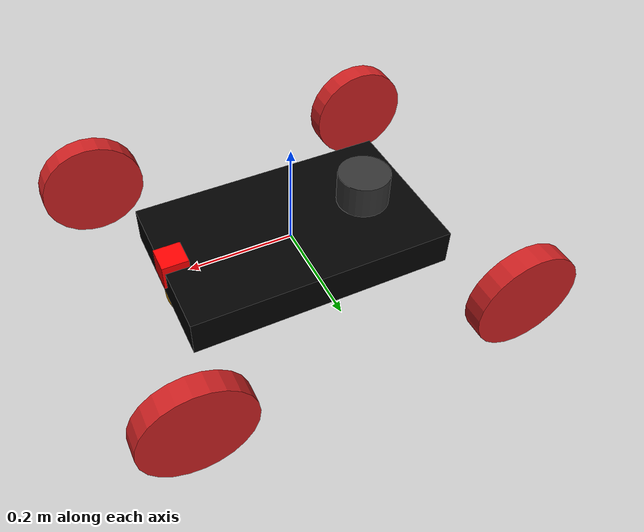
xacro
<?xml version="1.0"?>
<robot xmlns:xacro="http://www.ros.org/wiki/xacro" name="SherlockBot_xacro">
<!-- Gazebo Implementation-->
<!-- Colors-->
  <material name="black">
    <color rgba="0.0 0.0 0.0 1.0"/>
  </material>
  <material name="blue">
    <color rgba="0.203125 0.23828125 0.28515625 1.0"/>
  </material>
  <material name="green">
    <color rgba="0.0 0.8 0.0 1.0"/>
  </material>
  <material name="grey">
    <color rgba="0.2 0.2 0.2 1.0"/>
  </material>
  <material name="orange">
    <color rgba="1.0 0.423529411765 0.0392156862745 1.0"/>
  </material>
  <material name="brown">
    <color rgba="0.870588235294 0.811764705882 0.764705882353 1.0"/>
  </material>
  <material name="red">
    <color rgba="0.80078125 0.12890625 0.1328125 1.0"/>
  </material>
  <material name="white">
    <color rgba="1.0 1.0 1.0 1.0"/>
  </material>
<!-- Geometry -->
  <xacro:macro name="cylinder_geometry" params="l r">
    <geometry>
      <cylinder length="${l}" radius="${r}"/>
    </geometry>
  </xacro:macro>

<!-- Inertia-->
  <xacro:macro name="inertia" params="mass">
    <inertial>
      <mass value="${mass}"/>
      <origin rpy="0 1.5707 1.5707" xyz="0 0 0"/>
      <inertia ixx="0.000526666666667" ixy="0" ixz="0" iyy="0.000526666666667" iyz="0" izz="0.001"/>
    </inertial>
  </xacro:macro>

<!-- Wheels Macro-->
  <xacro:macro name="wheel" params="prefix x y z">
    <link name="${prefix}_wheel_link">
      <xacro:inertia mass="0.2"/>
      <collision>
        <origin rpy="0 1.5707 1.5707" xyz="${x} ${y} ${z}"/>
        <xacro:cylinder_geometry r="0.1" l="0.04"/>
      </collision>
      <visual>
        <origin rpy="0 1.5707 1.5707" xyz="${x} ${y} ${z}"/>
        <xacro:cylinder_geometry  l="0.04" r="0.1"/>
        <material name="red"/>
      </visual>
    </link>

    <joint name="${prefix}_wheel_joint" type="continuous">
      <origin rpy="0 0 0" xyz="${x} ${y} ${z}"/>
      <child link="${prefix}_wheel_link"/>
      <parent link="body"/>
      <axis rpy="0 0 0" xyz="0 1 0"/>
      <limit effort="10000" velocity="1000"/>
      <joint_properties damping="1.0" friction="1.0"/>
    </joint>
  </xacro:macro>
<!-- Dummy link and joint-->
<!-- Body Configuration -->
  <link name="body">
    <!-- pose and inertial -->

    <inertial>
      <mass value="5"/>
      <origin rpy="0 0 0" xyz="0 0 0.1"/>
      <inertia ixx="0.0395416666667" ixy="0" ixz="0" iyy="0.106208333333" iyz="0" izz="0.106208333333"/>
    </inertial>
    <!-- body -->
    <collision name="collision_body">
      <geometry>
        <box size="0.5 0.3 0.07"/>
      </geometry>
    </collision>
    <visual>
      <origin rpy="0 0 0" xyz="0 0 0"/>
      <geometry>
        <box size="0.5 0.3 0.07"/>
      </geometry>
      <material name="black"/>
    </visual>
    <!-- caster front -->
    <collision name="caster_front_collision">
      <origin rpy=" 0 0 0" xyz="0.35 0 -0.05"/>
      <geometry>
        <sphere radius="0.05"/>
      </geometry>
    </collision>
    <visual name="caster_front_visual">
      <origin rpy=" 0 0 0" xyz="0.2 0 -0.05"/>
      <geometry>
        <sphere radius="0.05"/>
      </geometry>
    </visual>
  </link>

<!-- Wheels configuration -->
  <xacro:wheel prefix="back_right" x="-0.15" y="0.15" z="0"/>
  <xacro:wheel prefix="back_left" x="-0.15" y="-0.15" z="0"/>
  <xacro:wheel prefix="front_right" x="0.15" y="0.15" z="0"/>
  <xacro:wheel prefix="front_left" x="0.15" y="-0.15" z="0"/>

<!-- Laser -->
  <link name="laser_link">
	  <collision>
	    <origin xyz="0 0 0.025" rpy="0 0 0"/>
	    <geometry>
		    <box size="0.05 0.05 0.05"/>
	    </geometry>
	  </collision>
	  <visual>
	    <origin xyz="0 0 0.025" rpy="0 0 0"/>
	    <geometry>
		    <box size="0.05 0.05 0.05"/>
	    </geometry>
	    <material name="red">
		    <color rgba="1 0 0 1"/>
	    </material>
	  </visual>
	  <inertial>
	    <mass value="1e-5" />
	    <origin xyz="0 0 0" rpy="0 0 0"/>
	    <inertia ixx="1e-6" ixy="0" ixz="0" iyy="1e-6" iyz="0" izz="1e-6" />
	  </inertial>
  </link>

  <joint name="laser_joint" type="fixed">
	  <axis xyz="0 1 0" />
	  <origin xyz="0.23 0 0.0" rpy="0 0 0"/>
	  <parent link="body"/>
	  <child link="laser_link"/>
	</joint>

<!-- Arm -->

  <joint name="body_to_arm1" type="continuous">
    <origin rpy="0 0 0" xyz="-0.15 0 0"/>
    <child link="arm1"/>
    <parent link="body"/>
    <axis xyz="0 0 1"/>
    <limit effort="10000" velocity="1000"/>
    <joint_properties damping="1.0" friction="1.0"/>
  </joint>

  <link name="arm1">
    <xacro:inertia mass="0.5"/>
    <collision>
      <origin xyz="0 0 0" rpy="0 0 0"/>
      <xacro:cylinder_geometry l="0.2" r="0.05"/>
    </collision>
    <visual>
      <origin xyz="0 0 0" rpy="0 0 0"/>
      <xacro:cylinder_geometry l="0.2" r="0.05"/>
      <material name="grey"/>
    </visual>
  </link>

  <joint name="arm1_to_grip" type="revolute">
    <origin rpy="0 0 0" xyz="0 0 0"/>
    <child link="grip"/>
    <parent link="arm1"/>
    <axis rpy="0 0 0" xyz="0 1 0"/>
    <limit effort="10000" lower="0" upper="3.1416" velocity="0.5"/>
  </joint>

  <link name="grip">
    <collision>
      <origin xyz="0 0 0" rpy="0 0 0"/>
      <geometry>
        <box size="0.02 0.02 0.02"/>
      </geometry>
    </collision>
    <visual>
      <origin xyz="0 0 0" rpy="0 0 0"/>
      <geometry>
        <box size="0.02 0.02 0.02"/>
      </geometry>
      <material name="blue"/>
    </visual>
    <inertial>
      <mass value="1e-5"/>
	    <origin xyz="0 0 0" rpy="0 0 0"/>
	    <inertia ixx="1e-6" ixy="0" ixz="0" iyy="1e-6" iyz="0" izz="1e-6" />
	  </inertial>
  </link>

</robot>
